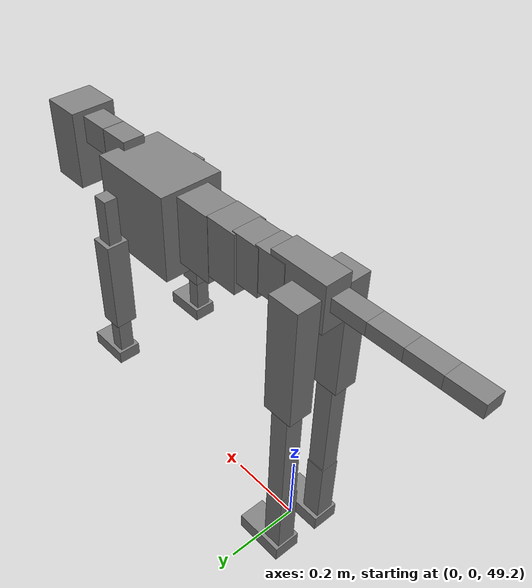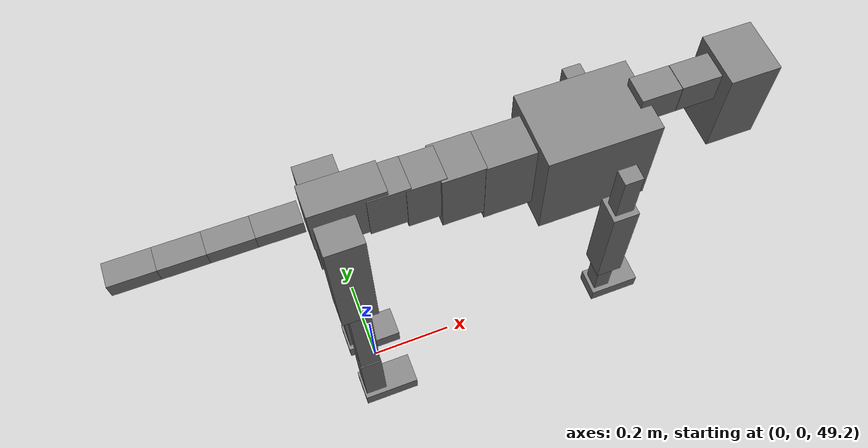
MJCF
<mujoco model="dog">

    <default>
        <joint armature="0.02" stiffness="1" damping="0.2" limited="true"/>
        <geom condim="3" friction="1 0.05 0.05" margin="0.01"/>
        <motor ctrllimited="true" ctrlrange="-1.0 1.0" forcelimited="true" gear="50"/>
    </default>

    <compiler inertiafromgeom="true" angle="radian"/>

    <option timestep="0.016" iterations="50" tolerance="1e-10" solver="Newton" jacobian="dense" cone="pyramidal"/>

    <size nconmax="20000" njmax="60000" nstack="5000000"/>
    <visual>
        <map force="0.1" zfar="30"/>
        <rgba haze="0.15 0.25 0.35 1"/>
        <quality shadowsize="2048"/>
        <global offwidth="800" offheight="800"/>
    </visual>

    <asset>
        <texture type="skybox" builtin="gradient" rgb1="0.3 0.5 0.7" rgb2="0 0 0" width="512" height="512"/>
        <texture name="texplane" type="2d" builtin="checker" rgb1=".2 .3 .4" rgb2=".1 0.15 0.2" width="512" height="512"
                 mark="cross" markrgb=".8 .8 .8"/>
        <texture name="texgeom" type="cube" builtin="flat" mark="cross" width="127" height="1278" rgb1="0.8 0.6 0.4"
                 rgb2="0.8 0.6 0.4" markrgb="1 1 1" random="0.01"/>

        <material name="matplane" reflectance="0.3" texture="texplane" texrepeat="1 1" texuniform="true"/>
        <material name="matgeom" texture="texgeom" texuniform="true" rgba="0.8 0.6 .4 1"/>
    </asset>

    <worldbody>
        <geom name="floor" pos="0 0 0" size="0 0 .25" type="plane" material="matplane" condim="3"/>

        <light directional="false" diffuse=".2 .2 .2" specular="0 0 0" pos="0 0 5" dir="0 0 -1" castshadow="false"/>
        <light mode="targetbodycom" target="torso" directional="false" diffuse=".8 .8 .8" specular="0.3 0.3 0.3"
               pos="0 0 4.0" dir="0 0 -1"/>

        <body name="root" pos="0 0 50">
            <freejoint name="root_1"/>
            <geom type="box" pos="0 0 -0.02" size="0.0774  0.0358  0.063" density="2030"/>

            <body name="spine1" pos="0.054 0 0">
                <joint name="spine1_y" axis="0 1 0" range="0 0.7" limited="true"/>
                <geom type="box" pos="0.02375 0 -0.03" size="0.04375  0.0375  0.05985" density="2030"/>

                <body name="spine2" pos="0.0612 0 0">
                    <joint name="spine2_y" axis="0 1 0" range="-0.15 0.15" limited="true"/>
                    <geom type="box" pos="0.03555  0  -0.04" size="0.04055  0.039  0.06615" density="2030"/>

                    <body name="spine3" pos="0.0730 0 0">
                        <joint name="spine3_y" axis="0 1 0" range="-0.15 0.15" limited="true"/>
                        <geom type="box" pos="0.03555  0  -0.057" size="0.04555  0.0445  0.081" density="2030"/>

                        <body name="spine4" pos="0.0780 0 0">
                            <joint name="spine4_y" axis="0 1 0" range="-0.15 0.15" limited="true"/>
                            <geom type="box" pos="0.05265  0  -0.07" size="0.05265  0.045  0.09135" density="2030"/>

                            <body name="torso" pos="0.1082 0 0">
                                <joint name="torso_y" axis="0 1 0" range="-0.15 0.15" limited="true"/>
                                <geom type="box" pos="0.11925  0  -0.085" size="0.11925  0.085  0.11745"
                                      density="2030"/>

                                <body name="neck1" pos="0.2160  0   0.0180">
                                    <joint name="neck1_y" axis="0 1 0" range="-1.2  -1" limited="true"/>
                                    <geom type="box" pos="0.0423  0  0" size="0.0423  0.03  0.036" density="2325"/>

                                    <body name="neck2" pos="0.0853  0  0">
                                        <joint name="neck2_y" axis="0 1 0" range="0.1  0" limited="true"/>
                                        <geom type="box" pos="0.0423  0  0" size="0.0423  0.03  0.036" density="2325"/>

                                        <body name="head" pos="0.0853  0  0">
                                            <joint name="head_y" axis="0 1 0" range="-0.3  -0.2" limited="true"/>
                                            <geom type="box" pos="0.0531  0  -0.055" size="0.0531  0.06  0.1044"
                                                  density="4030"/>

                                        </body>
                                    </body>
                                </body>

                                <body name="front_shoulder" pos="0.156  0   -0.0480">
                                    <joint name="front_shoulder_y" axis="0 1 0" range="-1 1.5" limited="true"/>
                                    <geom type="box" pos="0 0.13 -0.0475" size="0.0201  0.0172  0.0741" density="1158"/>
                                    <geom type="box" pos="0 -0.13 -0.0475" size="0.0201  0.0172  0.0741"
                                          density="1158"/>

                                    <body name="front_elbow" pos="0  0  -0.0950">
                                        <joint name="front_elbow_y" axis="0 1 0" range="-2 0" limited="true"/>
                                        <geom type="box" pos="0 0.13 -0.1250" size="0.0285  0.0292  0.1250"
                                              density="1081"/>
                                        <geom type="box" pos="0 -0.13 -0.1250" size="0.0285  0.0292  0.1250"
                                              density="1081"/>

                                        <body name="front_wrist" pos="0  0  -0.2501">
                                            <joint name="front_wrist_y" axis="0 1 0" range="-0.2 0" limited="true"/>
                                            <geom type="box" pos="0 0.13 -0.0546" size="0.0175  0.0194  0.0678"
                                                  density="1664"/>
                                            <geom type="box" pos="0 -0.13 -0.0546" size="0.0175  0.0194  0.0678"
                                                  density="1664"/>

                                            <body name="front_finger_end" pos="0  0  -0.1093">
                                                <joint name="front_finger_y" axis="0 1 0" range="-0.4 1"
                                                       limited="true"/>
                                                <geom type="box" pos="0.0302  0.13  -0.0027"
                                                      size="0.0553  0.0302  0.0177" density="1515"/>
                                                <geom type="box" pos="0.0302  -0.13  -0.0027"
                                                      size="0.0553  0.0302  0.0177" density="1515"/>

                                            </body>

                                        </body>
                                    </body>
                                </body>

                            </body>
                        </body>
                    </body>
                </body>
            </body>

            <body name="back_hip" pos="-0.03 0 -0.018">
                <joint name="back_hip_y" axis="0 1 0" range="-1.5 0.3" limited="true"/>
                <geom type="box" pos="0 0.07 -0.1381" size="0.0408  0.0320  0.1609" density="1154"/>
                <geom type="box" pos="0 -0.07 -0.1381" size="0.0408  0.0320  0.1609" density="1154"/>

                <body name="back_knee" pos="0  0  -0.2763">
                    <joint name="back_knee_y" axis="0 1 0" range="0 2.8" limited="true"/>
                    <geom type="box" pos="0 0.07 -0.1641" size="0.0245  0.0241  0.1797" density="1227"/>
                    <geom type="box" pos="0 -0.07 -0.1641" size="0.0245  0.0241  0.1797" density="1227"/>

                    <body name="back_ankle" pos="0  0  -0.3282">
                        <joint name="back_ankle_y" axis="0 1 0" range="-2.2 0" limited="true"/>
                        <geom type="box" pos="0 0.07 -0.0966" size="0.0261  0.0261  0.1078" density="1284"/>
                        <geom type="box" pos="0 -0.07 -0.0966" size="0.0261  0.0261  0.1078" density="1284"/>

                        <body name="back_toe_end" pos="0  0  -0.1931">
                            <joint name="back_toe_y" axis="0 1 0" range="-0.4 1" limited="true"/>
                            <geom type="box" pos="0.0374  0.07  -0.0071" size="0.0685  0.0374  0.0221" density="1515"/>
                            <geom type="box" pos="0.0374  -0.07  -0.0071" size="0.0685  0.0374  0.0221" density="1515"/>

                        </body>
                    </body>
                </body>
            </body>

            <body name="tail1" pos="-0.074 0 -0.006">
                <joint name="tail1_y" axis="0 1 0" range="-0.2 0.2" limited="true"/>
                <geom type="box" pos="-0.0536  0  0" size="0.045  0.025  0.0175" density="1587"/>

                <body name="tail2" pos="-0.09 0 0">
                    <joint name="tail2_y" axis="0 1 0" range="-0.2 0.2" limited="true"/>
                    <geom type="box" pos="-0.0536  0  0" size="0.045  0.025  0.0175" density="1587"/>

                    <body name="tail3" pos="-0.09 0 0">
                        <joint name="tail3_y" axis="0 1 0" range="-0.2 0.2" limited="true"/>
                        <geom type="box" pos="-0.0536  0  0" size="0.045  0.025  0.0175" density="1587"/>

                        <body name="tail4" pos="-0.09 0 0">
                            <joint name="tail4_y" axis="0 1 0" range="-0.2 0.2" limited="true"/>
                            <geom type="box" pos="-0.0536  0  0" size="0.045  0.025  0.0175" density="1587"/>

                        </body>
                    </body>
                </body>
            </body>
        </body>
    </worldbody>

    <actuator>
        <motor joint="spine1_y" forcerange="-150 150     "/>
        <motor joint="spine2_y" forcerange="-150 150     "/>
        <motor joint="spine3_y" forcerange="-150 150     "/>
        <motor joint="spine4_y" forcerange="-150 150     "/>
        <motor joint="torso_y" forcerange="-150 150     "/>
        <motor joint="neck1_y" forcerange="-100 100       "/>
        <motor joint="neck2_y" forcerange="-100 100       "/>
        <motor joint="head_y" forcerange="-150 150       "/>
        <motor joint="front_shoulder_y" forcerange="-105.13 109.39"/>
        <motor joint="front_elbow_y" forcerange="-142.17 169.93"/>
        <motor joint="front_wrist_y" forcerange="-101.23 54.16"/>
        <motor joint="front_finger_y" forcerange="-33.37 87.64"/>
        <motor joint="back_hip_y" forcerange="-376.61 250.33"/>
        <motor joint="back_knee_y" forcerange="-208.58 342.35"/>
        <motor joint="back_angle_y" forcerange="-246.13 70.75"/>
        <motor joint="back_toe_y" forcerange="-99.84 119.04"/>
        <motor joint="tail1_y" forcerange="-50 50     "/>
        <motor joint="tail2_y" forcerange="-50 50     "/>
        <motor joint="tail3_y" forcerange="-50 50     "/>
        <motor joint="tail4_y" forcerange="-50 50     "/>
    </actuator>
</mujoco>
